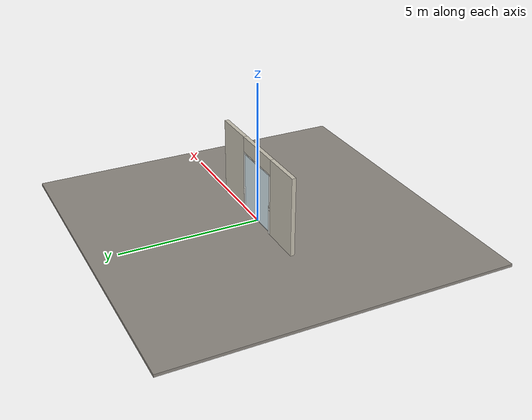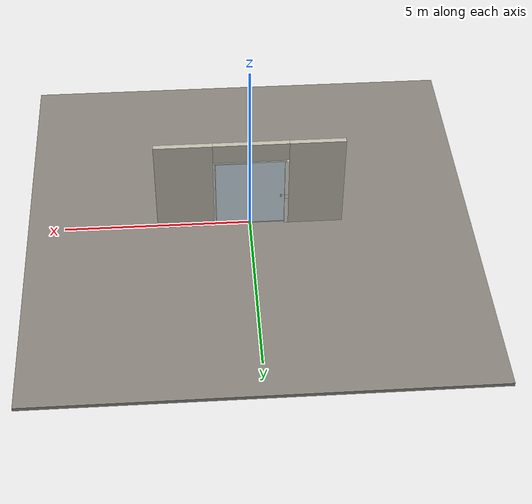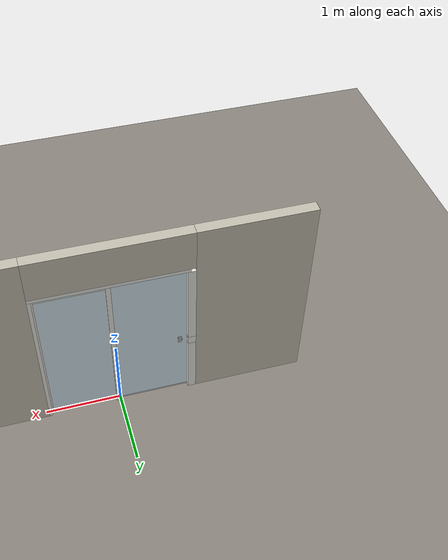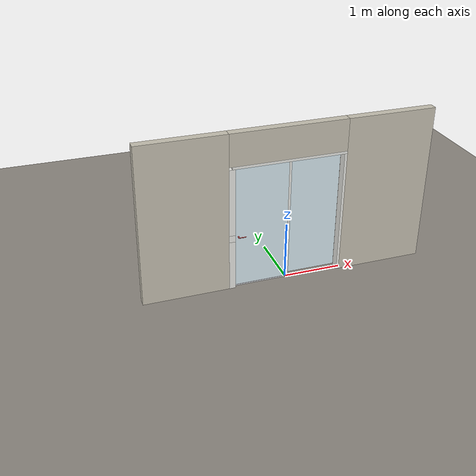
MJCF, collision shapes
<?xml version="1.0" ?>
<mujoco model="db0235_sliding_single_full">
  <compiler angle="radian" meshdir="../../hardware" texturedir="../../textures" autolimits="true" inertiafromgeom="false"/>
  <option timestep="0.002" integrator="implicitfast" cone="elliptic" impratio="10" noslip_iterations="3">
    <flag multiccd="enable"/>
  </option>
  <size memory="16M"/>
  <default>
    <geom condim="4" solref="0.005 1" solimp="0.95 0.99 0.001"/>
    <joint solreflimit="0.005 1" solimplimit="0.95 0.99 0.001"/>
    <tendon solreflimit="0.005 1"/>
    <equality solref="0.002 1"/>
  </default>
  <visual>
    <headlight ambient="0.4 0.4 0.4" diffuse="0.7 0.7 0.7" specular="0.2 0.2 0.2"/>
    <quality shadowsize="4096"/>
    <map znear="0.01" zfar="60"/>
  </visual>
  <asset>
    <mesh name="lever_57205841c3" file="lever_57205841c3.obj"/>
    <material name="mat_floor" rgba="0.55 0.53 0.5 1" specular="0.2" shininess="0.15" reflectance="0"/>
    <material name="mat_wall" rgba="0.78 0.76 0.7 1" specular="0.2" shininess="0.1" reflectance="0"/>
    <material name="mat_frame" rgba="0.92 0.92 0.9 1" specular="0.2" shininess="0.6" reflectance="0"/>
    <material name="mat_track" rgba="0.8 0.81 0.83 1" specular="0.8" shininess="0.6" reflectance="0.4"/>
    <material name="mat_fixed_glass" rgba="0.85 0.92 0.95 0.25" specular="0.2" shininess="0.95" reflectance="0.1"/>
    <material name="mat_leaf" rgba="0.85 0.92 0.95 0.25" specular="0.2" shininess="0.95" reflectance="0.1"/>
    <material name="mat_glass_leaf" rgba="0.85 0.92 0.95 0.25" specular="0.2" shininess="0.95" reflectance="0.1"/>
    <material name="mat_patch" rgba="0.75 0.76 0.77 1" specular="0.8" shininess="0.65" reflectance="0.4"/>
    <material name="mat_roller" rgba="0.65 0.66 0.68 1" specular="0.74" shininess="0.5" reflectance="0.36"/>
    <material name="mat_op_black_matte_metal" rgba="0.05 0.05 0.05 1" specular="0.38" shininess="0.3" reflectance="0.12"/>
    <material name="mat_trim" rgba="0.85 0.66 0.3 1" specular="0.8" shininess="0.75" reflectance="0.4"/>
    <material name="mat_op_nickel_satin" rgba="0.72 0.7 0.66 1" specular="0.8" shininess="0.65" reflectance="0.4"/>
    <material name="mat_hook" rgba="0.75 0.76 0.77 1" specular="0.8" shininess="0.65" reflectance="0.4"/>
    <texture name="skybox" type="skybox" builtin="gradient" rgb1="0.6 0.7 0.85" rgb2="0.9 0.92 0.95" width="256" height="256"/>
  </asset>
  <worldbody>
    <light name="sun" pos="1.5 -2.5 4" dir="-0.3 0.5 -0.8" directional="true" diffuse="0.8 0.8 0.8" specular="0.3 0.3 0.3" castshadow="true"/>
    <light name="fill" pos="-1.5 2.5 3" dir="0.3 -0.5 -0.7" directional="true" diffuse="0.35 0.35 0.4" castshadow="false"/>
    <camera name="robot_view" pos="0 -2.667812 1.836487" xyaxes="1 0 0 0 0.26963 0.962964" fovy="52"/>
    <camera name="far_view" pos="0 2.667812 1.836487" xyaxes="-1 0 0 0 -0.26963 0.962964" fovy="52"/>
    <camera name="iso" pos="2.027537 -2.240962 2.263337" xyaxes="0.741536 0.670913 0 -0.242917 0.268487 0.932151" fovy="46"/>
    <camera name="detail_handle" pos="-0.649 -0.7775 1.23" xyaxes="0.97561 0.219512 0 -0.070934 0.315262 0.94635" fovy="38"/>
    <geom name="floor" type="box" size="6 6 0.05" pos="0 0 -0.05" material="mat_floor" group="0" contype="1" conaffinity="1" friction="0.8 0.005 0.0001" density="2400"/>
    <geom name="wall_left" type="box" size="0.7355 0.0725 1.3895" pos="-1.7645 0 1.3895" material="mat_wall" group="0" contype="1" conaffinity="1" friction="0.6 0.005 0.0001" density="800"/>
    <geom name="wall_right" type="box" size="0.7655 0.0725 1.3895" pos="1.7345 0 1.3895" material="mat_wall" group="0" contype="1" conaffinity="1" friction="0.6 0.005 0.0001" density="800"/>
    <geom name="wall_header" type="box" size="0.999 0.0725 0.2775" pos="-0.03 0 2.5015" material="mat_wall" group="0" contype="1" conaffinity="1" friction="0.6 0.005 0.0001" density="800"/>
    <geom name="jamb_r" type="box" size="0.0225 0.0725 1.0895" pos="0.9465 0 1.0895" material="mat_frame" group="0" contype="1" conaffinity="1" friction="0.6 0.005 0.0001" density="300"/>
    <geom name="jamb_head" type="box" size="0.969 0.0725 0.0225" pos="0 0 2.2015" material="mat_frame" group="0" contype="1" conaffinity="1" friction="0.6 0.005 0.0001" density="300"/>
    <geom name="fixed_panel_glass" type="box" size="0.442 0.003 1.0395" pos="0.462 0.04 1.0895" material="mat_fixed_glass" group="0" contype="1" conaffinity="1" friction="0.6 0.005 0.0001" density="2500"/>
    <geom name="fixed_panel_stile" type="box" size="0.03 0.012 1.0895" pos="0.03 0.0475 1.0895" material="mat_frame" group="0" contype="1" conaffinity="1" friction="0.6 0.005 0.0001" density="1400"/>
    <geom name="bottom_rail" type="box" size="0.9275 0.02 0.012" pos="-0.0415 0 0.012" material="mat_track" group="0" contype="1" conaffinity="1" friction="0.6 0.005 0.0001" density="2700"/>
    <geom name="leaf_hook_keeper" type="box" size="0.008 0.015 0.006" pos="-0.937 0 0.95" material="mat_hook" group="0" contype="1" conaffinity="1" friction="0.6 0.005 0.0001" density="7900"/>
    <geom name="jamb_latch_pwall_950_n" type="box" size="0.0525 0.022 0.06" pos="-0.9765 -0.0505 0.95" material="mat_frame" group="0" contype="1" conaffinity="1" friction="0.6 0.005 0.0001" density="300"/>
    <geom name="jamb_latch_pwall_950_p" type="box" size="0.0525 0.022 0.06" pos="-0.9765 0.0505 0.95" material="mat_frame" group="0" contype="1" conaffinity="1" friction="0.6 0.005 0.0001" density="300"/>
    <geom name="jamb_latch_pback_950" type="box" size="0.004 0.0285 0.06" pos="-1.025 0 0.95" material="mat_frame" group="0" contype="1" conaffinity="1" friction="0.6 0.005 0.0001" density="300"/>
    <geom name="jamb_latch_0" type="box" size="0.0525 0.0725 0.445" pos="-0.9765 0 0.445" material="mat_frame" group="0" contype="1" conaffinity="1" friction="0.6 0.005 0.0001" density="300"/>
    <geom name="jamb_latch_1" type="box" size="0.0525 0.0725 0.5845" pos="-0.9765 0 1.5945" material="mat_frame" group="0" contype="1" conaffinity="1" friction="0.6 0.005 0.0001" density="300"/>
    <geom name="leaf_hook_keeper_plate_b" type="box" size="0.0345 0.003 0.0005" pos="-0.9235 0 0.887" quat="0.5 0.5 0.5 0.5" material="mat_hook" group="1" contype="0" conaffinity="0" density="7800"/>
    <geom name="leaf_hook_keeper_plate_l" type="box" size="0.003 0.06 0.0005" pos="-0.9235 -0.0315 0.95" quat="0.5 0.5 0.5 0.5" material="mat_hook" group="1" contype="0" conaffinity="0" density="7800"/>
    <geom name="leaf_hook_keeper_plate_t" type="box" size="0.0345 0.003 0.0005" pos="-0.9235 0 1.013" quat="0.5 0.5 0.5 0.5" material="mat_hook" group="1" contype="0" conaffinity="0" density="7800"/>
    <geom name="leaf_hook_keeper_plate_r" type="box" size="0.003 0.06 0.0005" pos="-0.9235 0.0315 0.95" quat="0.5 0.5 0.5 0.5" material="mat_hook" group="1" contype="0" conaffinity="0" density="7800"/>
    <geom name="leaf_hook_keeper_bracket" type="box" size="0.0064 0.00725 0.005" pos="-0.937 0.02175 0.95" material="mat_hook" group="1" contype="0" conaffinity="0" density="7850"/>
    <site name="approach_point" pos="0 -1.5 0" quat="1 0 0 0" size="0.05" rgba="0.2 0.9 0.2 0.5" group="4"/>
    <site name="goal_point" pos="0 1.5 0" quat="1 0 0 0" size="0.05" rgba="0.2 0.9 0.2 0.5" group="4"/>
    <site name="door_plane_center" pos="0 0 1.0895" quat="1 0 0 0" size="0.02" rgba="0.2 0.9 0.2 0.5" group="4"/>
    <body name="leaf" pos="-0.462 0 0">
      <inertial pos="-0.000172 0.000002 1.094478" mass="137.208886" quat="0.500044 -0.500048 -0.499952 -0.499956" diaginertia="9.592451945 52.314779638 61.861020477"/>
      <joint name="leaf_slide" type="slide" axis="1 0 0" limited="true" range="0 0.841" damping="8.885584" frictionloss="26.334559" armature="0.5"/>
      <geom name="leaf_glass" type="box" size="0.457 0.0225 1.067" pos="0 0 1.097" material="mat_glass_leaf" group="0" contype="1" conaffinity="1" friction="0.4 0.005 0.0001" density="1"/>
      <geom name="leaf_roller_0" type="cylinder" size="0.015 0.008" pos="-0.342 0 0.039" quat="0.707107 -0.707107 0 0" material="mat_roller" group="1" contype="0" conaffinity="0" density="7850"/>
      <geom name="leaf_roller_1" type="cylinder" size="0.015 0.008" pos="0.312 0 0.039" quat="0.707107 -0.707107 0 0" material="mat_roller" group="1" contype="0" conaffinity="0" density="7850"/>
      <geom name="leaf_ext_pull_p" type="box" size="0.025 0.0005 0.05" pos="-0.367 0.023 0.95" material="mat_op_nickel_satin" group="1" contype="0" conaffinity="0" density="1000"/>
      <geom name="leaf_hook_faceplate" type="box" size="0.0006 0.011 0.045" pos="-0.4564 0 0.95" material="mat_hook" group="1" contype="0" conaffinity="0" density="7900"/>
      <site name="leaf_ext_pull_grip_p" pos="-0.367 0.0225 0.95" quat="1 0 0 0" size="0.012" rgba="0.2 0.9 0.2 0.5" group="4"/>
      <site name="leaf_edge_mid" pos="-0.457 0 1.097" quat="1 0 0 0" size="0.02" rgba="0.2 0.9 0.2 0.5" group="4"/>
      <body name="leaf_handle" pos="-0.397 0 0.95">
        <inertial pos="0.017248 -0.047626 0" mass="0.430744" quat="0.299866 0 0 0.953981" diaginertia="0.000194323 0.000667311 0.000808833"/>
        <joint name="leaf_handle_hinge" type="hinge" axis="0 1 0" limited="true" range="0 0.05" damping="0.206307" frictionloss="0.042" stiffness="1" springref="-0.35" armature="0.01"/>
        <geom name="leaf_handle_spindle" type="cylinder" size="0.006 0.0305" pos="0 0 0" quat="0.707107 -0.707107 0 0" material="mat_op_black_matte_metal" group="1" contype="0" conaffinity="0" density="7850"/>
        <geom name="leaf_handle_lever_n" type="mesh" mesh="lever_57205841c3" pos="0 -0.0225 0" quat="0 0 -0.707107 0.707107" material="mat_op_black_matte_metal" group="1" contype="0" conaffinity="0" density="3000"/>
        <geom name="leaf_handle_lever_col_n" type="capsule" size="0.007 0.053" pos="0.06 -0.0775 0" quat="0.707107 0 0.707107 0" material="mat_op_black_matte_metal" group="3" contype="1" conaffinity="1" rgba="0.8 0.3 0.3 0.25" friction="0.7 0.01 0.0001" density="3000"/>
        <geom name="leaf_handle_hub_col_n" type="cylinder" size="0.012 0.022" pos="0 -0.0525 0" quat="0.707107 -0.707107 0 0" material="mat_op_black_matte_metal" group="3" contype="1" conaffinity="1" rgba="0.8 0.3 0.3 0.25" friction="0.6 0.005 0.0001" density="3000"/>
        <site name="leaf_handle_grip_n" pos="0.096 -0.0775 0" quat="1 0 0 0" size="0.012" rgba="0.2 0.9 0.2 0.5" group="4"/>
      </body>
      <body name="leaf_hook" pos="-0.457 0 0.95">
        <inertial pos="-0.026737 0 -0.009263" mass="0.072048" quat="0.200817 0.200817 -0.677991 0.677991" diaginertia="0.000005266 0.00001511 0.000019175"/>
        <joint name="leaf_hook_hinge" type="hinge" axis="0 -1 0" limited="true" range="0 1" damping="0.05" frictionloss="0.1" armature="0.005"/>
        <geom name="leaf_hook_arm" type="box" size="0.022 0.005 0.006" pos="-0.02 0 -0.016" material="mat_hook" group="0" contype="1" conaffinity="1" friction="0.6 0.005 0.0001" density="7900"/>
        <geom name="leaf_hook_tip" type="box" size="0.006 0.005 0.016" pos="-0.036 0 0" material="mat_hook" group="0" contype="1" conaffinity="1" friction="0.6 0.005 0.0001" density="7900"/>
      </body>
    </body>
  </worldbody>
  <equality>
    <joint name="leaf_hook_couple" joint1="leaf_hook_hinge" joint2="leaf_handle_hinge" polycoef="0 1 0 0 0" active="true"/>
  </equality>
  <sensor>
    <jointpos name="leaf_slide_pos" joint="leaf_slide"/>
    <jointvel name="leaf_slide_vel" joint="leaf_slide"/>
    <jointpos name="leaf_handle_hinge_pos" joint="leaf_handle_hinge"/>
    <jointvel name="leaf_handle_hinge_vel" joint="leaf_handle_hinge"/>
    <jointpos name="leaf_hook_hinge_pos" joint="leaf_hook_hinge"/>
    <jointvel name="leaf_hook_hinge_vel" joint="leaf_hook_hinge"/>
  </sensor>
</mujoco>
